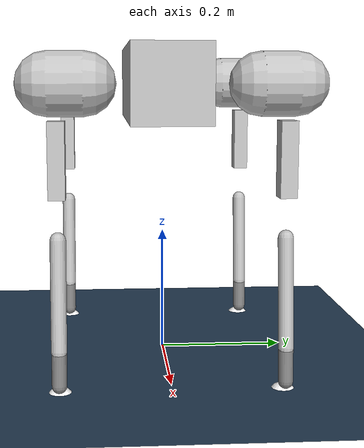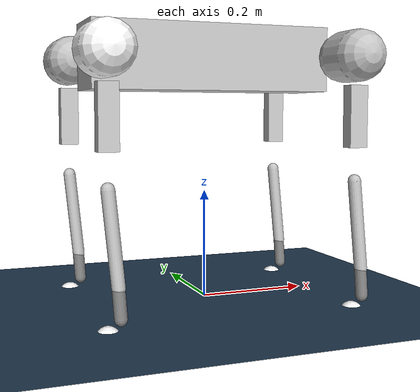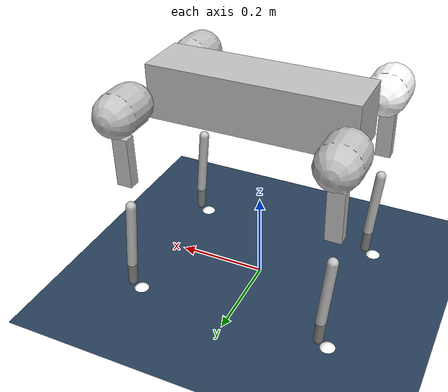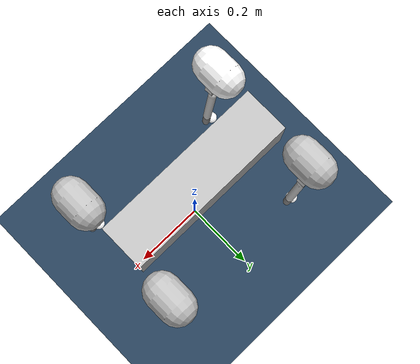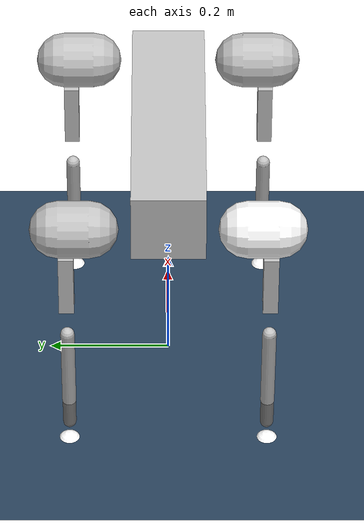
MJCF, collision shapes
<mujoco model="dog_scene_mjx">
  <!-- MJX 场景：include MJX 变体狗本体 + 干净地板（对应 scene_positional.xml） -->
  <include file="dog_mjx.xml"/>

  <statistic center="0 0 0.1" extent="0.8"/>

  <visual>
    <headlight diffuse="0.6 0.6 0.6" ambient="0.3 0.3 0.3" specular="0 0 0"/>
    <rgba haze="0.15 0.25 0.35 1"/>
    <global azimuth="-130" elevation="-20"/>
  </visual>

  <asset>
    <texture type="skybox" builtin="gradient" rgb1="0.3 0.5 0.7" rgb2="0 0 0" width="512" height="3072"/>
    <texture type="2d" name="groundplane" builtin="checker" mark="edge" rgb1="0.2 0.3 0.4" rgb2="0.1 0.2 0.3"
      markrgb="0.8 0.8 0.8" width="300" height="300"/>
    <material name="groundplane" texture="groundplane" texuniform="true" texrepeat="5 5" reflectance="0.2"/>
  </asset>

  <worldbody>
    <light pos="0 0 1.5" dir="0 0 -1" directional="true"/>
    <!-- 摩擦与 scene_positional.xml 完全一致（椭圆锥 impratio=100） -->
    <geom name="floor" size="0 0 0.05" type="plane" material="groundplane" friction="1.2 0.1 0.01"/>
  </worldbody>
</mujoco>

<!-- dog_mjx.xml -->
<mujoco model="dog_mjx">
  <compiler angle="radian" meshdir="assets" autolimits="true" />

  <option cone="elliptic" impratio="100" integrator="implicitfast" timestep="0.002" />
  <default>
    <default class="dog">
      <geom friction="0.4" margin="0.001" condim="1"/>
      <joint axis="0 1 0" damping="0.1" armature="0.01" frictionloss="0.2"/>
      <default class="abduction">
        <joint axis="1 0 0" range="-1.0472 1.0472"/>
      </default>
      <default class="hip">
        <default class="front_hip">
          <joint range="-1.5708 3.4907"/>
        </default>
        <default class="back_hip">
          <joint range="-0.5236 4.5379"/>
        </default>
      </default>
      <default class="knee">
        <joint range="-2.7227 -0.83776"/>
      </default>
      <default class="visual">
        <geom type="mesh" contype="0" conaffinity="0" group="2"/>
      </default>
      <default class="collision">
        <geom group="3"/>
        <default class="foot">
          <geom size="0.022" pos="-0.002 0 -0.213" priority="1" condim="6" friction="0.9 0.02 0.01"/>
        </default>
      </default>
    </default>
  </default>
  <asset>
    <mesh name="base" file="base.STL"/>
    <mesh name="FL_hip" file="FL_hip.STL"/>
    <mesh name="L_thigh" file="L_thigh.STL"/>
    <mesh name="calf" file="calf.STL"/>
    <mesh name="foot" file="foot.stl"/>
    <mesh name="FR_hip" file="FR_hip.STL"/>
    <mesh name="R_thigh" file="R_thigh.STL"/>
    <mesh name="RL_hip" file="RL_hip.STL"/>
    <mesh name="RR_hip" file="RR_hip.STL"/>
  </asset>

  <worldbody>
    <body name="base_link" pos="0 0 0.445" childclass="dog">
    <freejoint />
    <inertial pos="9.86379408949578E-05 -0.000228650036753486 -0.00925201672369771" quat="-0.000543471 0.713435 -0.00173769 0.700719"
        mass="6.5" diaginertia="0.109146 0.091188 0.0290862" />
    <geom type="mesh" contype="0" conaffinity="0" group="1" density="0" rgba="0.752941 0.752941 0.752941 1" mesh="base"/>

    <geom size="0.225 0.06 0.06" type="box" rgba="0.752941 0.752941 0.752941 1" class="collision"/>

    <site name='imu' size='0.01' pos='0.0 0 0.0'/>
    <body name="FL_hip" pos="0.22337 0.06 0">
      <inertial pos="-0.00478669 1.90134e-05 0.000220638" quat="0.543385 0.393149 0.59332 0.445126" mass="1.06948" diaginertia="0.000616962 0.00060064 0.000553598"/>
      <joint name="FL_hip_joint" pos="0 0 0" axis="1 0 0" range="-1 1" actuatorfrcrange="-20 20"/>
      <geom type="mesh" contype="0" conaffinity="0" group="1" density="0" rgba="0.752941 0.752941 0.752941 1" mesh="FL_hip" class="visual"/>
      <geom size="0.046 0.025" pos="0 0.09 0" quat="0.707107 0.707107 0 0" type="capsule" rgba="0.752941 0.752941 0.752941 1" class="collision"/>
      <body name="FL_thigh" pos="0 0.1039 0">
        <inertial pos="-0.0023115 -0.0259576 -0.0356322" quat="0.992657 -0.109729 0.0350175 0.0369386" mass="1.55793" diaginertia="0.00600418 0.0059368 0.00120337"/>
        <joint name="FL_thigh_joint" pos="0 0 0" axis="0 1 0" range="-1.5 3" actuatorfrcrange="-20 20"/>
        <geom type="mesh" contype="0" conaffinity="0" group="1" density="0" rgba="0.752941 0.752941 0.752941 1" mesh="L_thigh"/>
        <geom size="0.055 0.01225 0.017" pos="0 0 -0.1065" quat="0.707107 0 0.707107 0" type="box" rgba="0.752941 0.752941 0.752941 1" class="collision"/>
        <body name="FL_calf" pos="0 0 -0.22">
          <inertial pos="0.00621509 -3.74074e-05 -0.131004" quat="0.707636 -0.00832079 -0.00797709 0.706483" mass="0.336118" diaginertia="0.00319573 0.00318278 5.01358e-05"/>
          <joint name="FL_calf_joint" pos="0 0 0" axis="0 1 0" range="-2.5 -0.85" actuatorfrcrange="-25 25"/>
          <geom type="mesh" contype="0" conaffinity="0" group="1" density="0" rgba="0.752941 0.752941 0.752941 1" mesh="calf"/>
          <geom size="0.0115 0.08" pos="0.008 0 -0.08" quat="0.99875 0 -0.0499792 0" type="capsule" rgba="0.752941 0.752941 0.752941 1" class="collision"/>
          <geom size="0.011 0.025" pos="0.0172383 0 -0.184126" quat="0.99935 0 -0.0360572 0" type="capsule" class="collision"/>
          <geom pos="0 0 -0.24" quat="1 0 0 0" type="mesh" contype="0" conaffinity="0" group="1" density="0" rgba="1 1 1 1" mesh="foot"/>
          <geom size="0.022" pos="-0.002 0 -0.24" rgba="1 1 1 1" class="foot"/>
        </body>
      </body>
    </body>
    <body name="FR_hip" pos="0.22337 -0.06 0">
      <inertial pos="0 0 0" quat="0.59332 0.445126 0.543385 0.393149" mass="1.06948" diaginertia="0.000616962 0.00060064 0.000553598"/>
      <joint name="FR_hip_joint" pos="0 0 0" axis="1 0 0" range="-1 1" actuatorfrcrange="-20 20"/>
      <geom type="mesh" contype="0" conaffinity="0" group="1" density="0" rgba="0.752941 0.752941 0.752941 1" mesh="FR_hip"/>
      <geom size="0.046 0.025" pos="0 -0.09 0" quat="0.707107 0.707107 0 0" type="capsule" rgba="0.752941 0.752941 0.752941 1" class="collision"/>
      <body name="FR_thigh" pos="0 -0.1039 0">
        <inertial pos="-0.00102168 0.0347852 -0.0207384" quat="0.992657 -0.109729 0.0350175 0.0369386" mass="1.55793" diaginertia="0.00600418 0.0059368 0.00120337"/>
        <joint name="FR_thigh_joint" pos="0 0 0" axis="0 1 0" range="-1.5 3" actuatorfrcrange="-20 20"/>
        <geom type="mesh" contype="0" conaffinity="0" group="1" density="0" rgba="0.752941 0.752941 0.752941 1" mesh="R_thigh"/>
        <geom size="0.055 0.01225 0.017" pos="0 0 -0.1065" quat="0.707107 0 0.707107 0" type="box" rgba="0.752941 0.752941 0.752941 1" class="collision"/>
        <body name="FR_calf" pos="0 0 -0.22">
          <inertial pos="0.00621509 -3.74074e-05 -0.131053" quat="0.707636 -0.00840943 -0.00806572 0.706507" mass="0.336118" diaginertia="0.00319826 0.00318522 5.02364e-05"/>
          <joint name="FR_calf_joint" pos="0 0 0" axis="0 1 0" range="-2.5 -0.85" actuatorfrcrange="-25 25"/>
          <geom type="mesh" contype="0" conaffinity="0" group="1" density="0" rgba="0.752941 0.752941 0.752941 1" mesh="calf"/>
          <geom size="0.0115 0.08" pos="0.008 0 -0.08" quat="0.99875 0 -0.0499792 0" type="capsule" rgba="0.752941 0.752941 0.752941 1" class="collision"/>
          <geom size="0.011 0.025" pos="0.0172383 0 -0.184126" quat="0.99935 0 -0.0360572 0" type="capsule" class="collision"/>
          <geom pos="0 0 -0.24" quat="1 0 0 0" type="mesh" contype="0" conaffinity="0" group="1" density="0" rgba="1 1 1 1" mesh="foot"/>
          <geom size="0.022" pos="-0.002 0 -0.24" rgba="1 1 1 1" class="foot"/>
        </body>
      </body>
    </body>
    <body name="RL_hip" pos="-0.22337 0.06 0">
      <inertial pos="0.00478669 1.87933e-05 -0.000220657" quat="0.445371 0.593125 0.393326 0.54327" mass="1.06948" diaginertia="0.000616955 0.000600636 0.000553598"/>
      <joint name="RL_hip_joint" pos="0 0 0" axis="1 0 0" range="-1 1" actuatorfrcrange="-20 20"/>
      <geom type="mesh" contype="0" conaffinity="0" group="1" density="0" rgba="0.752941 0.752941 0.752941 1" mesh="RL_hip"/>
      <geom size="0.046 0.025" pos="0 0.09 0" quat="0.707107 0.707107 0 0" type="capsule" rgba="0.752941 0.752941 0.752941 1" class="collision"/>
      <body name="RL_thigh" pos="0 0.1039 0">
        <inertial pos="-0.00245813 -0.0259576 -0.0351974" quat="0.990985 0.110735 0.0396787 -0.0641195" mass="1.55025" diaginertia="0.00570289 0.00563221 0.00120498"/>
        <joint name="RL_thigh_joint" pos="0 0 0" axis="0 1 0" range="-1.5 3" actuatorfrcrange="-20 20"/>
        <geom type="mesh" contype="0" conaffinity="0" group="1" density="0" rgba="0.752941 0.752941 0.752941 1" mesh="L_thigh"/>
        <geom size="0.055 0.01225 0.017" pos="0 0 -0.1065" quat="0.707107 0 0.707107 0" type="box" rgba="0.752941 0.752941 0.752941 1" class="collision"/>
        <body name="RL_calf" pos="0 0 -0.22">
          <inertial pos="0.00621509 -3.74074e-05 -0.131004" quat="0.707636 -0.00832079 -0.00797709 0.706483" mass="0.336118" diaginertia="0.00319573 0.00318278 5.01358e-05"/>
          <joint name="RL_calf_joint" pos="0 0 0" axis="0 1 0" range="-2.5 -0.85" actuatorfrcrange="-25 25"/>
          <geom type="mesh" contype="0" conaffinity="0" group="1" density="0" rgba="0.752941 0.752941 0.752941 1" mesh="calf"/>
          <geom size="0.0115 0.08" pos="0.008 0 -0.08" quat="0.99875 0 -0.0499792 0" type="capsule" rgba="0.752941 0.752941 0.752941 1" class="collision"/>
          <geom size="0.011 0.025" pos="0.0172383 0 -0.184126" quat="0.99935 0 -0.0360572 0" type="capsule" class="collision"/>
          <geom pos="0 0 -0.24" quat="1 0 0 0" type="mesh" contype="0" conaffinity="0" group="1" density="0" rgba="1 1 1 1" mesh="foot"/>
          <geom size="0.022" pos="-0.002 0 -0.24" rgba="1 1 1 1" class="foot"/>
        </body>
      </body>
    </body>
    <body name="RR_hip" pos="-0.22337 -0.06 0">
      <inertial pos="0 0 0" quat="0.393382 0.543235 0.445412 0.593089" mass="1.06948" diaginertia="0.000616964 0.000600637 0.000553599"/>
      <joint name="RR_hip_joint" pos="0 0 0" axis="1 0 0" range="-1 1" actuatorfrcrange="-20 20"/>
      <geom type="mesh" contype="0" conaffinity="0" group="1" density="0" rgba="1 1 1 1" mesh="RR_hip"/>
      <geom size="0.046 0.025" pos="0 -0.09 0" quat="0.707107 0.707107 0 0" type="capsule" rgba="1 1 1 1" class="collision"/>
      <body name="RR_thigh" pos="0 -0.1039 0">
        <inertial pos="-0.000904252 0.0347851 -0.0209699" quat="0.99094 -0.11144 0.0403121 0.0632004" mass="1.55005" diaginertia="0.00570564 0.00563926 0.00120469"/>
        <joint name="RR_thigh_joint" pos="0 0 0" axis="0 1 0" range="-1.5 3" actuatorfrcrange="-20 20"/>
        <geom type="mesh" contype="0" conaffinity="0" group="1" density="0" rgba="0.752941 0.752941 0.752941 1" mesh="R_thigh"/>
        <geom size="0.055 0.01225 0.017" pos="0 0 -0.1065" quat="0.707107 0 0.707107 0" type="box" rgba="0.752941 0.752941 0.752941 1" class="collision"/>
        <body name="RR_calf" pos="0 0 -0.22">
          <inertial pos="0.00624462 -3.74074e-05 -0.131053" quat="0.70761 -0.00840943 -0.00806572 0.706507" mass="0.336118" diaginertia="0.00319826 0.00318522 5.02364e-05"/>
          <joint name="RR_calf_joint" pos="0 0 0" axis="0 1 0" range="-2.5 -0.85" actuatorfrcrange="-25 25"/>
          <geom type="mesh" contype="0" conaffinity="0" group="1" density="0" rgba="0.752941 0.752941 0.752941 1" mesh="calf"/>
          <geom size="0.0115 0.08" pos="0.008 0 -0.08" quat="0.99875 0 -0.0499792 0" type="capsule" rgba="0.752941 0.752941 0.752941 1" class="collision"/>
          <geom size="0.011 0.025" pos="0.0174683 0 -0.184509" quat="0.99935 0 -0.0360572 0" type="capsule" class="collision"/>
          <geom pos="0 0 -0.24" quat="1 0 0 0" type="mesh" contype="0" conaffinity="0" group="1" density="0" rgba="1 1 1 1" mesh="foot"/>
          <geom size="0.022" pos="-0.002 0 -0.24" rgba="1 1 1 1" class="foot"/>
        </body>
      </body>
      </body>

    </body>
  </worldbody>

  <!-- 12 个位置执行器：kp=60 kv=2，ctrlrange=关节限位（与 dog_positional.xml 一致） -->
  <actuator>
    <position name="FL_hip"    joint="FL_hip_joint"    kp="60" kv="2" ctrllimited="true" ctrlrange="-1 1"/>
    <position name="FL_thigh"  joint="FL_thigh_joint"  kp="60" kv="2" ctrllimited="true" ctrlrange="-1.5 3"/>
    <position name="FL_calf"   joint="FL_calf_joint"   kp="60" kv="2" ctrllimited="true" ctrlrange="-2.5 -0.85"/>

    <position name="FR_hip"    joint="FR_hip_joint"    kp="60" kv="2" ctrllimited="true" ctrlrange="-1 1"/>
    <position name="FR_thigh"  joint="FR_thigh_joint"  kp="60" kv="2" ctrllimited="true" ctrlrange="-1.5 3"/>
    <position name="FR_calf"   joint="FR_calf_joint"   kp="60" kv="2" ctrllimited="true" ctrlrange="-2.5 -0.85"/>

    <position name="RL_hip"    joint="RL_hip_joint"    kp="60" kv="2" ctrllimited="true" ctrlrange="-1 1"/>
    <position name="RL_thigh"  joint="RL_thigh_joint"  kp="60" kv="2" ctrllimited="true" ctrlrange="-1.5 3"/>
    <position name="RL_calf"   joint="RL_calf_joint"   kp="60" kv="2" ctrllimited="true" ctrlrange="-2.5 -0.85"/>

    <position name="RR_hip"    joint="RR_hip_joint"    kp="60" kv="2" ctrllimited="true" ctrlrange="-1 1"/>
    <position name="RR_thigh"  joint="RR_thigh_joint"  kp="60" kv="2" ctrllimited="true" ctrlrange="-1.5 3"/>
    <position name="RR_calf"   joint="RR_calf_joint"   kp="60" kv="2" ctrllimited="true" ctrlrange="-2.5 -0.85"/>
  </actuator>

  <!-- keyframe home（站立姿态），qpos 前7=[xyz 0 0 0.27, quat 1 0 0 0]，后12=[0,0.9,-1.8]×4 -->
  <keyframe>
    <key name="home" qpos="0 0 0.27 1 0 0 0 0 0.9 -1.8 0 0.9 -1.8 0 0.9 -1.8 0 0.9 -1.8"
      ctrl="0 0.9 -1.8 0 0.9 -1.8 0 0.9 -1.8 0 0.9 -1.8" />
  </keyframe>
</mujoco>
